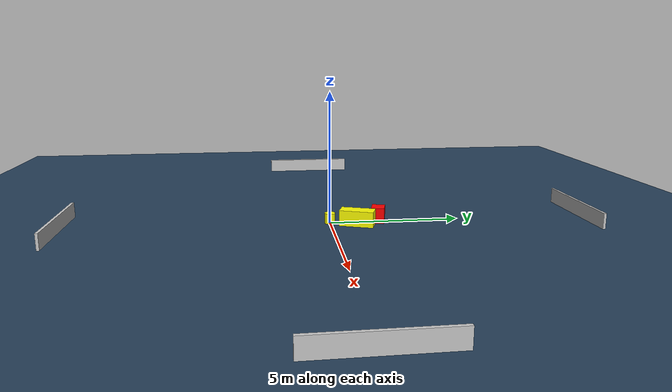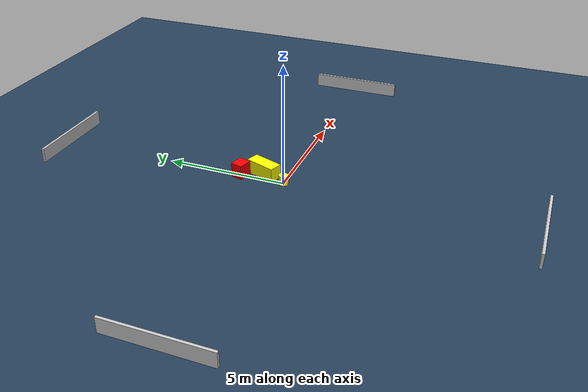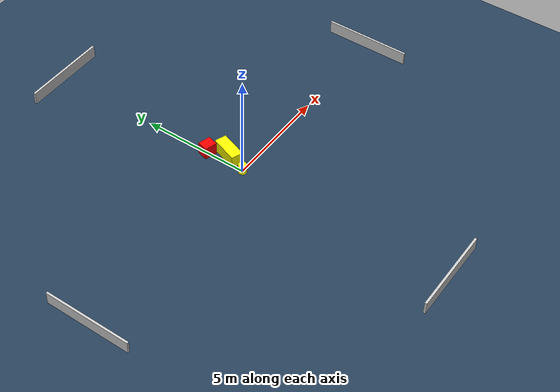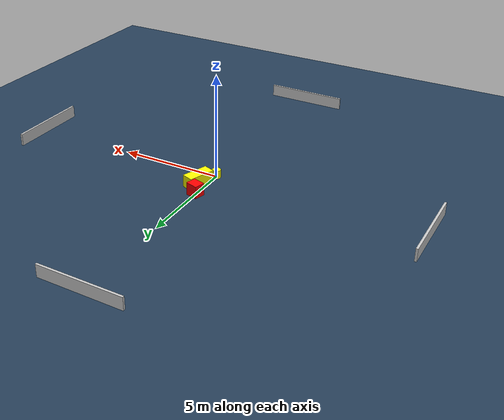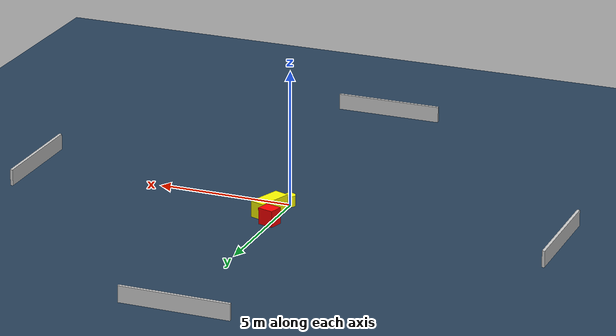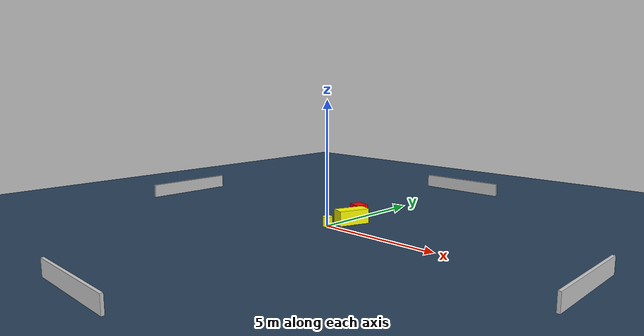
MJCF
<?xml version="1.0" ?>
<mujoco model="generated_environment">
  <option timestep="0.01" integrator="RK4" cone="elliptic"/>
  <default>
    <geom density="1"/>
  </default>
  <asset>
    <texture builtin="gradient" height="3072" name="skybox" rgb1="0.3 0.5 0.7" rgb2="0 0 0" type="skybox" width="512"/>
    <texture builtin="checker" height="300" name="groundplane" rgb1="0.2 0.3 0.4" rgb2="0.1 0.2 0.3" type="2d" width="300"/>
    <material name="groundplane" reflectance="0.2" texrepeat="5 5" texture="groundplane"/>
  </asset>
  <worldbody>
    <light dir="0 0 -1" directional="true" pos="0 0 1.5"/>
    <geom condim="3" friction="0.5 0.005 0.001" material="groundplane" name="floor" pos="0 0 0" size="0 0 0.05" type="plane"/>
    <body name="walls">
      <geom name="wall_1" condim="4" pos="-10.0 0.0 0.3" rgba="0.800000011920929 0.800000011920929 0.800000011920929 1.0" size="0.05 2.0 0.3" type="box"/>
      <geom name="wall_2" condim="4" pos="10.0 0.0 0.3" rgba="0.800000011920929 0.800000011920929 0.800000011920929 1.0" size="0.05 2.0 0.3" type="box"/>
      <geom name="wall_3" condim="4" pos="0.0 -10.0 0.3" rgba="0.800000011920929 0.800000011920929 0.800000011920929 1.0" size="2.0 0.05 0.3" type="box"/>
      <geom name="wall_4" condim="4" pos="0.0 10.0 0.3" rgba="0.800000011920929 0.800000011920929 0.800000011920929 1.0" size="2.0 0.05 0.3" type="box"/>
    </body>
    <body name="robot">
      <joint name="joint_x" type="slide" pos="0 0 0" axis="1 0 0"/>
      <joint name="joint_y" type="slide" pos="0 0 0" axis="0 1 0"/>
      <geom name="robot" type="cylinder" pos="0.0 0.0 0.2" size="0.2 0.2 0.0" mass="5.0" friction="1.0 0.005 0.0001" condim="4" rgba="1.0 1.0 0.0 1.0"/>
    </body>
    <body name="obstacle_1_movable">
      <geom name="obstacle_1_movable" condim="4" pos="0.37907049589489333 0.9989245098300589 0.3" euler="0 0 160.14281498646153" friction="0.0 0.005 0.001" rgba="1.0 1.0 0.0 1.0" size="0.27936817416424886 0.6476036904463485 0.3" type="box" mass="0.1"/>
      <joint type="free"/>
    </body>
    <body name="obstacle_2_static">
      <geom name="obstacle_2_static" condim="4" pos="0.01842537052554293 1.8634147257568352 0.3" euler="0 0 74.31500734719778" friction="0.0 0.005 0.001" rgba="1.0 0.0 0.0 1.0" size="0.24941105219962986 0.2943311858773555 0.3" type="box"/>
    </body>
  </worldbody>
  <actuator>
    <motor name="actuator_x" joint="joint_x" gear="1" ctrlrange="-1 1"/>
    <motor name="actuator_y" joint="joint_y" gear="1" ctrlrange="-1 1"/>
  </actuator>
</mujoco>
